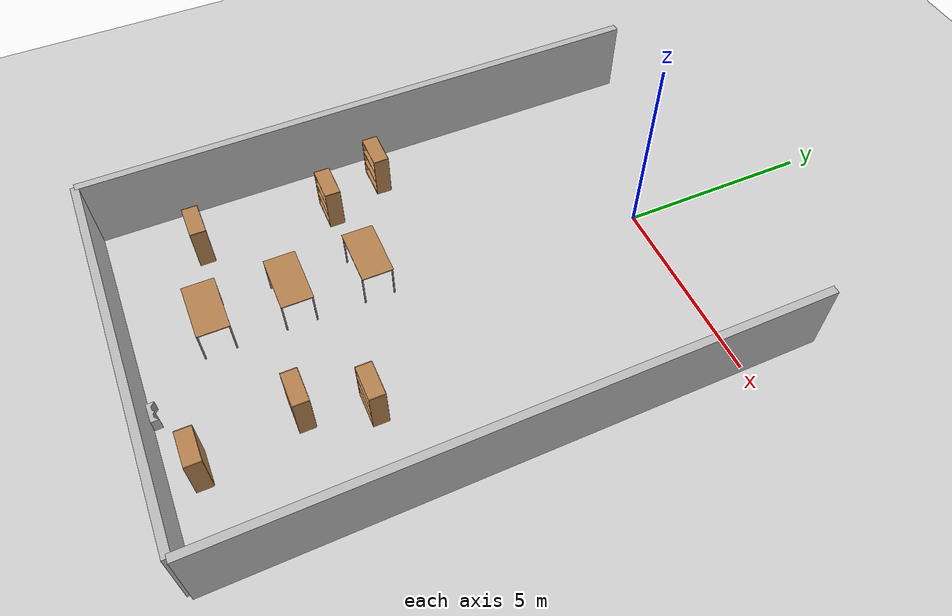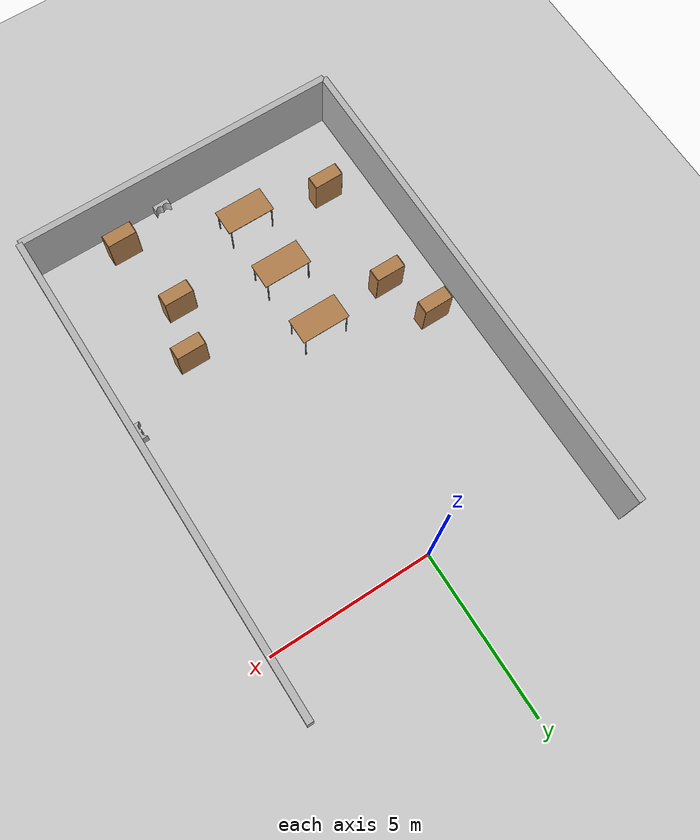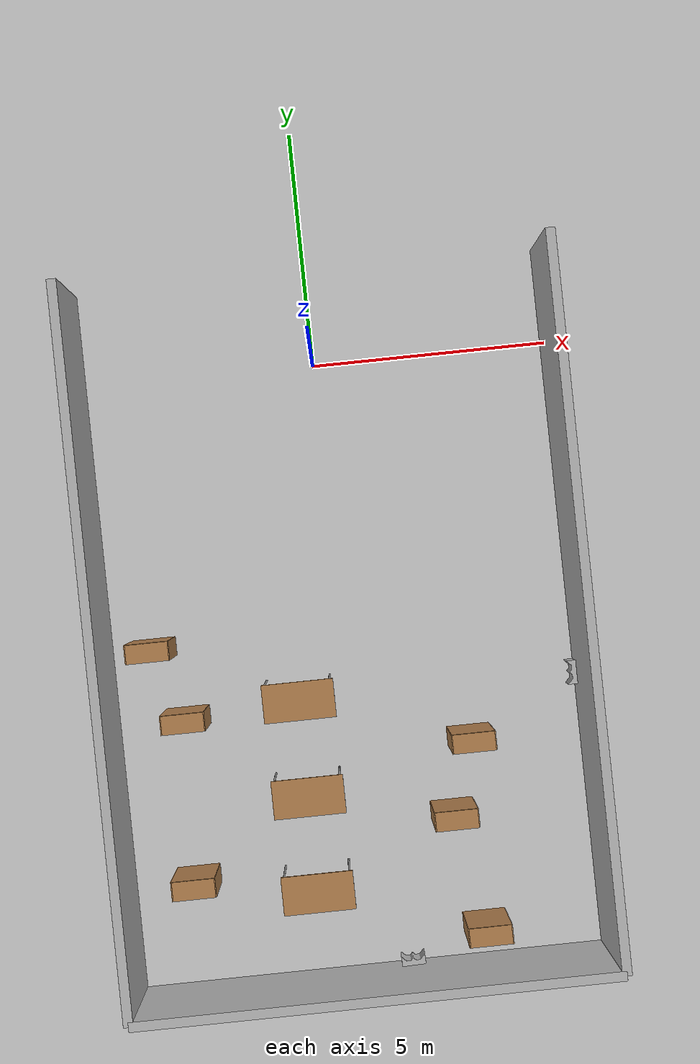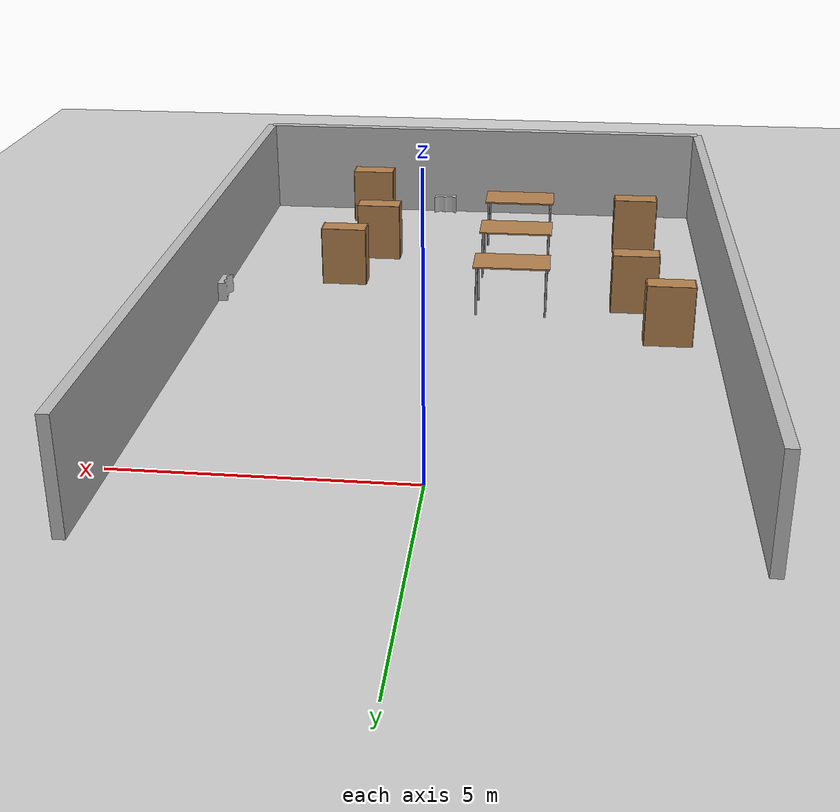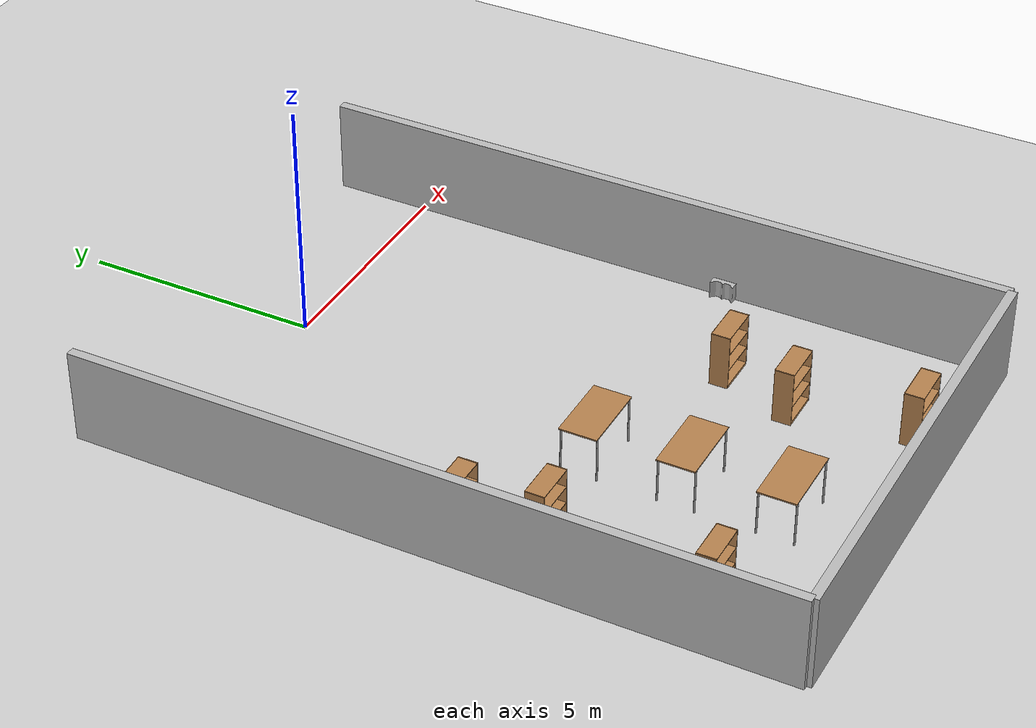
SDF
<sdf version="1.7">
 <world name="default">
  <model name="ground_plane">
   <static>1</static>
   <link name="link">
    <collision name="collision">
     <geometry><plane><normal>0 0 1</normal><size>100 100</size></plane></geometry>
     <surface><friction><ode><mu>100</mu><mu2>50</mu2></ode></friction></surface>
    </collision>
    <visual name="visual">
     <cast_shadows>0</cast_shadows>
     <geometry><plane><normal>0 0 1</normal><size>100 100</size></plane></geometry>
     <material>
      <script><uri>file://media/materials/scripts/gazebo.material</uri><name>Gazebo/Grey</name></script>
     </material>
    </visual>
    <velocity_decay><linear>0</linear><angular>0</angular></velocity_decay>
   </link>
  </model>
  <model name="wall_1_model">
   <pose>0 -13 1 0 -0 0</pose>
   <static>1</static>
   <link name="wall_1_body">
    <inertial>
     <mass>1</mass>
     <inertia><ixx>1</ixx><ixy>0</ixy><ixz>0</ixz><iyy>1</iyy><iyz>0</iyz><izz>1</izz></inertia>
    </inertial>
    <collision name="collision"><geometry><box><size>10 0.2 2</size></box></geometry></collision>
    <visual name="visual"><geometry><box><size>10 0.2 2</size></box></geometry></visual>
    <velocity_decay><linear>0</linear><angular>0</angular></velocity_decay>
   </link>
  </model>
  <model name="wall_3_model">
   <pose>-5 -5.5 1 0 -0 0</pose>
   <static>1</static>
   <link name="wall_3_body">
    <inertial>
     <mass>1</mass>
     <inertia><ixx>1</ixx><ixy>0</ixy><ixz>0</ixz><iyy>1</iyy><iyz>0</iyz><izz>1</izz></inertia>
    </inertial>
    <collision name="collision"><geometry><box><size>0.2 15 2</size></box></geometry></collision>
    <visual name="visual"><geometry><box><size>0.2 15 2</size></box></geometry></visual>
    <velocity_decay><linear>0</linear><angular>0</angular></velocity_decay>
   </link>
  </model>
  <model name="wall_4_model">
   <pose>5 -5.5 1 0 -0 0</pose>
   <static>1</static>
   <link name="wall_4_body">
    <inertial>
     <mass>1</mass>
     <inertia><ixx>1</ixx><ixy>0</ixy><ixz>0</ixz><iyy>1</iyy><iyz>0</iyz><izz>1</izz></inertia>
    </inertial>
    <collision name="collision"><geometry><box><size>0.2 15 2</size></box></geometry></collision>
    <visual name="visual"><geometry><box><size>0.2 15 2</size></box></geometry></visual>
    <velocity_decay><linear>0</linear><angular>0</angular></velocity_decay>
   </link>
  </model>
  <model name="bookshelf">
   <static>1</static>
   <link name="link">
    <inertial><mass>1</mass></inertial>
    <collision name="back">
     <pose>0 0.005 0.6 0 -0 0</pose>
     <geometry><box><size>0.9 0.01 1.2</size></box></geometry>
    </collision>
    <visual name="visual1">
     <pose>0 0.005 0.6 0 -0 0</pose>
     <geometry><box><size>0.9 0.01 1.2</size></box></geometry>
     <material>
      <script><uri>file://media/materials/scripts/gazebo.material</uri><name>Gazebo/Wood</name></script>
     </material>
    </visual>
    <collision name="left_side">
     <pose>0.45 -0.195 0.6 0 -0 0</pose>
     <geometry><box><size>0.02 0.4 1.2</size></box></geometry>
    </collision>
    <visual name="visual2">
     <pose>0.45 -0.195 0.6 0 -0 0</pose>
     <geometry><box><size>0.02 0.4 1.2</size></box></geometry>
     <material>
      <script><uri>file://media/materials/scripts/gazebo.material</uri><name>Gazebo/Wood</name></script>
     </material>
    </visual>
    <collision name="right_side">
     <pose>-0.45 -0.195 0.6 0 -0 0</pose>
     <geometry><box><size>0.02 0.4 1.2</size></box></geometry>
    </collision>
    <visual name="visual3">
     <pose>-0.45 -0.195 0.6 0 -0 0</pose>
     <geometry><box><size>0.02 0.4 1.2</size></box></geometry>
     <material>
      <script><uri>file://media/materials/scripts/gazebo.material</uri><name>Gazebo/Wood</name></script>
     </material>
    </visual>
    <collision name="bottom">
     <pose>0 -0.195 0.03 0 -0 0</pose>
     <geometry><box><size>0.88 0.4 0.06</size></box></geometry>
    </collision>
    <visual name="visual4">
     <pose>0 -0.195 0.03 0 -0 0</pose>
     <geometry><box><size>0.88 0.4 0.06</size></box></geometry>
     <material>
      <script><uri>file://media/materials/scripts/gazebo.material</uri><name>Gazebo/Wood</name></script>
     </material>
    </visual>
    <collision name="top">
     <pose>0 -0.195 1.19 0 -0 0</pose>
     <geometry><box><size>0.88 0.4 0.02</size></box></geometry>
    </collision>
    <visual name="visual5">
     <pose>0 -0.195 1.19 0 -0 0</pose>
     <geometry><box><size>0.88 0.4 0.02</size></box></geometry>
     <material>
      <script><uri>file://media/materials/scripts/gazebo.material</uri><name>Gazebo/Wood</name></script>
     </material>
    </visual>
    <collision name="low_shelf">
     <pose>0 -0.195 0.43 0 -0 0</pose>
     <geometry><box><size>0.88 0.4 0.02</size></box></geometry>
    </collision>
    <visual name="visual6">
     <pose>0 -0.195 0.43 0 -0 0</pose>
     <geometry><box><size>0.88 0.4 0.02</size></box></geometry>
     <material>
      <script><uri>file://media/materials/scripts/gazebo.material</uri><name>Gazebo/Wood</name></script>
     </material>
    </visual>
    <collision name="high_shelf">
     <pose>0 -0.195 0.8 0 -0 0</pose>
     <geometry><box><size>0.88 0.4 0.02</size></box></geometry>
    </collision>
    <visual name="visual7">
     <pose>0 -0.195 0.8 0 -0 0</pose>
     <geometry><box><size>0.88 0.4 0.02</size></box></geometry>
     <material>
      <script><uri>file://media/materials/scripts/gazebo.material</uri><name>Gazebo/Wood</name></script>
     </material>
    </visual>
    <velocity_decay><linear>0</linear><angular>0</angular></velocity_decay>
   </link>
   <pose>2 -9.55401 0 0 -0 0</pose>
  </model>
  <model name="table">
   <static>1</static>
   <link name="link">
    <collision name="surface">
     <pose>0 0 1 0 -0 0</pose>
     <geometry><box><size>1.5 0.8 0.03</size></box></geometry>
    </collision>
    <visual name="visual1">
     <pose>0 0 1 0 -0 0</pose>
     <geometry><box><size>1.5 0.8 0.03</size></box></geometry>
     <material>
      <script><uri>file://media/materials/scripts/gazebo.material</uri><name>Gazebo/Wood</name></script>
     </material>
    </visual>
    <collision name="front_left_leg">
     <pose>0.68 0.38 0.5 0 -0 0</pose>
     <geometry><cylinder><radius>0.02</radius><length>1</length></cylinder></geometry>
    </collision>
    <visual name="front_left_leg">
     <pose>0.68 0.38 0.5 0 -0 0</pose>
     <geometry><cylinder><radius>0.02</radius><length>1</length></cylinder></geometry>
     <material>
      <script><uri>file://media/materials/scripts/gazebo.material</uri><name>Gazebo/Grey</name></script>
     </material>
    </visual>
    <collision name="front_right_leg">
     <pose>0.68 -0.38 0.5 0 -0 0</pose>
     <geometry><cylinder><radius>0.02</radius><length>1</length></cylinder></geometry>
    </collision>
    <visual name="front_right_leg">
     <pose>0.68 -0.38 0.5 0 -0 0</pose>
     <geometry><cylinder><radius>0.02</radius><length>1</length></cylinder></geometry>
     <material>
      <script><uri>file://media/materials/scripts/gazebo.material</uri><name>Gazebo/Grey</name></script>
     </material>
    </visual>
    <collision name="back_right_leg">
     <pose>-0.68 -0.38 0.5 0 -0 0</pose>
     <geometry><cylinder><radius>0.02</radius><length>1</length></cylinder></geometry>
    </collision>
    <visual name="back_right_leg">
     <pose>-0.68 -0.38 0.5 0 -0 0</pose>
     <geometry><cylinder><radius>0.02</radius><length>1</length></cylinder></geometry>
     <material>
      <script><uri>file://media/materials/scripts/gazebo.material</uri><name>Gazebo/Grey</name></script>
     </material>
    </visual>
    <collision name="back_left_leg">
     <pose>-0.68 0.38 0.5 0 -0 0</pose>
     <geometry><cylinder><radius>0.02</radius><length>1</length></cylinder></geometry>
    </collision>
    <visual name="back_left_leg">
     <pose>-0.68 0.38 0.5 0 -0 0</pose>
     <geometry><cylinder><radius>0.02</radius><length>1</length></cylinder></geometry>
     <material>
      <script><uri>file://media/materials/scripts/gazebo.material</uri><name>Gazebo/Grey</name></script>
     </material>
    </visual>
    <velocity_decay><linear>0</linear><angular>0</angular></velocity_decay>
   </link>
   <pose>-1 -9 0 0 -0 0</pose>
  </model>
  <model name="bookshelf_2">
   <static>1</static>
   <link name="link">
    <inertial><mass>1</mass></inertial>
    <collision name="back">
     <pose>0 0.005 0.6 0 -0 0</pose>
     <geometry><box><size>0.9 0.01 1.2</size></box></geometry>
    </collision>
    <visual name="visual1">
     <pose>0 0.005 0.6 0 -0 0</pose>
     <geometry><box><size>0.9 0.01 1.2</size></box></geometry>
     <material>
      <script><uri>file://media/materials/scripts/gazebo.material</uri><name>Gazebo/Wood</name></script>
     </material>
    </visual>
    <collision name="left_side">
     <pose>0.45 -0.195 0.6 0 -0 0</pose>
     <geometry><box><size>0.02 0.4 1.2</size></box></geometry>
    </collision>
    <visual name="visual2">
     <pose>0.45 -0.195 0.6 0 -0 0</pose>
     <geometry><box><size>0.02 0.4 1.2</size></box></geometry>
     <material>
      <script><uri>file://media/materials/scripts/gazebo.material</uri><name>Gazebo/Wood</name></script>
     </material>
    </visual>
    <collision name="right_side">
     <pose>-0.45 -0.195 0.6 0 -0 0</pose>
     <geometry><box><size>0.02 0.4 1.2</size></box></geometry>
    </collision>
    <visual name="visual3">
     <pose>-0.45 -0.195 0.6 0 -0 0</pose>
     <geometry><box><size>0.02 0.4 1.2</size></box></geometry>
     <material>
      <script><uri>file://media/materials/scripts/gazebo.material</uri><name>Gazebo/Wood</name></script>
     </material>
    </visual>
    <collision name="bottom">
     <pose>0 -0.195 0.03 0 -0 0</pose>
     <geometry><box><size>0.88 0.4 0.06</size></box></geometry>
    </collision>
    <visual name="visual4">
     <pose>0 -0.195 0.03 0 -0 0</pose>
     <geometry><box><size>0.88 0.4 0.06</size></box></geometry>
     <material>
      <script><uri>file://media/materials/scripts/gazebo.material</uri><name>Gazebo/Wood</name></script>
     </material>
    </visual>
    <collision name="top">
     <pose>0 -0.195 1.19 0 -0 0</pose>
     <geometry><box><size>0.88 0.4 0.02</size></box></geometry>
    </collision>
    <visual name="visual5">
     <pose>0 -0.195 1.19 0 -0 0</pose>
     <geometry><box><size>0.88 0.4 0.02</size></box></geometry>
     <material>
      <script><uri>file://media/materials/scripts/gazebo.material</uri><name>Gazebo/Wood</name></script>
     </material>
    </visual>
    <collision name="low_shelf">
     <pose>0 -0.195 0.43 0 -0 0</pose>
     <geometry><box><size>0.88 0.4 0.02</size></box></geometry>
    </collision>
    <visual name="visual6">
     <pose>0 -0.195 0.43 0 -0 0</pose>
     <geometry><box><size>0.88 0.4 0.02</size></box></geometry>
     <material>
      <script><uri>file://media/materials/scripts/gazebo.material</uri><name>Gazebo/Wood</name></script>
     </material>
    </visual>
    <collision name="high_shelf">
     <pose>0 -0.195 0.8 0 -0 0</pose>
     <geometry><box><size>0.88 0.4 0.02</size></box></geometry>
    </collision>
    <visual name="visual7">
     <pose>0 -0.195 0.8 0 -0 0</pose>
     <geometry><box><size>0.88 0.4 0.02</size></box></geometry>
     <material>
      <script><uri>file://media/materials/scripts/gazebo.material</uri><name>Gazebo/Wood</name></script>
     </material>
    </visual>
    <velocity_decay><linear>0</linear><angular>0</angular></velocity_decay>
   </link>
   <pose>-3.41849 -7 0 0 -0 0</pose>
  </model>
  <model name="table_0">
   <static>1</static>
   <link name="link">
    <collision name="surface">
     <pose>0 0 1 0 -0 0</pose>
     <geometry><box><size>1.5 0.8 0.03</size></box></geometry>
    </collision>
    <visual name="visual1">
     <pose>0 0 1 0 -0 0</pose>
     <geometry><box><size>1.5 0.8 0.03</size></box></geometry>
     <material>
      <script><uri>file://media/materials/scripts/gazebo.material</uri><name>Gazebo/Wood</name></script>
     </material>
    </visual>
    <collision name="front_left_leg">
     <pose>0.68 0.38 0.5 0 -0 0</pose>
     <geometry><cylinder><radius>0.02</radius><length>1</length></cylinder></geometry>
    </collision>
    <visual name="front_left_leg">
     <pose>0.68 0.38 0.5 0 -0 0</pose>
     <geometry><cylinder><radius>0.02</radius><length>1</length></cylinder></geometry>
     <material>
      <script><uri>file://media/materials/scripts/gazebo.material</uri><name>Gazebo/Grey</name></script>
     </material>
    </visual>
    <collision name="front_right_leg">
     <pose>0.68 -0.38 0.5 0 -0 0</pose>
     <geometry><cylinder><radius>0.02</radius><length>1</length></cylinder></geometry>
    </collision>
    <visual name="front_right_leg">
     <pose>0.68 -0.38 0.5 0 -0 0</pose>
     <geometry><cylinder><radius>0.02</radius><length>1</length></cylinder></geometry>
     <material>
      <script><uri>file://media/materials/scripts/gazebo.material</uri><name>Gazebo/Grey</name></script>
     </material>
    </visual>
    <collision name="back_right_leg">
     <pose>-0.68 -0.38 0.5 0 -0 0</pose>
     <geometry><cylinder><radius>0.02</radius><length>1</length></cylinder></geometry>
    </collision>
    <visual name="back_right_leg">
     <pose>-0.68 -0.38 0.5 0 -0 0</pose>
     <geometry><cylinder><radius>0.02</radius><length>1</length></cylinder></geometry>
     <material>
      <script><uri>file://media/materials/scripts/gazebo.material</uri><name>Gazebo/Grey</name></script>
     </material>
    </visual>
    <collision name="back_left_leg">
     <pose>-0.68 0.38 0.5 0 -0 0</pose>
     <geometry><cylinder><radius>0.02</radius><length>1</length></cylinder></geometry>
    </collision>
    <visual name="back_left_leg">
     <pose>-0.68 0.38 0.5 0 -0 0</pose>
     <geometry><cylinder><radius>0.02</radius><length>1</length></cylinder></geometry>
     <material>
      <script><uri>file://media/materials/scripts/gazebo.material</uri><name>Gazebo/Grey</name></script>
     </material>
    </visual>
    <velocity_decay><linear>0</linear><angular>0</angular></velocity_decay>
   </link>
   <pose>-1 -7 0 0 -0 0</pose>
  </model>
  <model name="table_1">
   <static>1</static>
   <link name="link">
    <collision name="surface">
     <pose>0 0 1 0 -0 0</pose>
     <geometry><box><size>1.5 0.8 0.03</size></box></geometry>
    </collision>
    <visual name="visual1">
     <pose>0 0 1 0 -0 0</pose>
     <geometry><box><size>1.5 0.8 0.03</size></box></geometry>
     <material>
      <script><uri>file://media/materials/scripts/gazebo.material</uri><name>Gazebo/Wood</name></script>
     </material>
    </visual>
    <collision name="front_left_leg">
     <pose>0.68 0.38 0.5 0 -0 0</pose>
     <geometry><cylinder><radius>0.02</radius><length>1</length></cylinder></geometry>
    </collision>
    <visual name="front_left_leg">
     <pose>0.68 0.38 0.5 0 -0 0</pose>
     <geometry><cylinder><radius>0.02</radius><length>1</length></cylinder></geometry>
     <material>
      <script><uri>file://media/materials/scripts/gazebo.material</uri><name>Gazebo/Grey</name></script>
     </material>
    </visual>
    <collision name="front_right_leg">
     <pose>0.68 -0.38 0.5 0 -0 0</pose>
     <geometry><cylinder><radius>0.02</radius><length>1</length></cylinder></geometry>
    </collision>
    <visual name="front_right_leg">
     <pose>0.68 -0.38 0.5 0 -0 0</pose>
     <geometry><cylinder><radius>0.02</radius><length>1</length></cylinder></geometry>
     <material>
      <script><uri>file://media/materials/scripts/gazebo.material</uri><name>Gazebo/Grey</name></script>
     </material>
    </visual>
    <collision name="back_right_leg">
     <pose>-0.68 -0.38 0.5 0 -0 0</pose>
     <geometry><cylinder><radius>0.02</radius><length>1</length></cylinder></geometry>
    </collision>
    <visual name="back_right_leg">
     <pose>-0.68 -0.38 0.5 0 -0 0</pose>
     <geometry><cylinder><radius>0.02</radius><length>1</length></cylinder></geometry>
     <material>
      <script><uri>file://media/materials/scripts/gazebo.material</uri><name>Gazebo/Grey</name></script>
     </material>
    </visual>
    <collision name="back_left_leg">
     <pose>-0.68 0.38 0.5 0 -0 0</pose>
     <geometry><cylinder><radius>0.02</radius><length>1</length></cylinder></geometry>
    </collision>
    <visual name="back_left_leg">
     <pose>-0.68 0.38 0.5 0 -0 0</pose>
     <geometry><cylinder><radius>0.02</radius><length>1</length></cylinder></geometry>
     <material>
      <script><uri>file://media/materials/scripts/gazebo.material</uri><name>Gazebo/Grey</name></script>
     </material>
    </visual>
    <velocity_decay><linear>0</linear><angular>0</angular></velocity_decay>
   </link>
   <pose>-1 -11 0 0 -0 0</pose>
  </model>
  <model name="bookshelf_3">
   <static>1</static>
   <link name="link">
    <inertial><mass>1</mass></inertial>
    <collision name="back">
     <pose>0 0.005 0.6 0 -0 0</pose>
     <geometry><box><size>0.9 0.01 1.2</size></box></geometry>
    </collision>
    <visual name="visual1">
     <pose>0 0.005 0.6 0 -0 0</pose>
     <geometry><box><size>0.9 0.01 1.2</size></box></geometry>
     <material>
      <script><uri>file://media/materials/scripts/gazebo.material</uri><name>Gazebo/Wood</name></script>
     </material>
    </visual>
    <collision name="left_side">
     <pose>0.45 -0.195 0.6 0 -0 0</pose>
     <geometry><box><size>0.02 0.4 1.2</size></box></geometry>
    </collision>
    <visual name="visual2">
     <pose>0.45 -0.195 0.6 0 -0 0</pose>
     <geometry><box><size>0.02 0.4 1.2</size></box></geometry>
     <material>
      <script><uri>file://media/materials/scripts/gazebo.material</uri><name>Gazebo/Wood</name></script>
     </material>
    </visual>
    <collision name="right_side">
     <pose>-0.45 -0.195 0.6 0 -0 0</pose>
     <geometry><box><size>0.02 0.4 1.2</size></box></geometry>
    </collision>
    <visual name="visual3">
     <pose>-0.45 -0.195 0.6 0 -0 0</pose>
     <geometry><box><size>0.02 0.4 1.2</size></box></geometry>
     <material>
      <script><uri>file://media/materials/scripts/gazebo.material</uri><name>Gazebo/Wood</name></script>
     </material>
    </visual>
    <collision name="bottom">
     <pose>0 -0.195 0.03 0 -0 0</pose>
     <geometry><box><size>0.88 0.4 0.06</size></box></geometry>
    </collision>
    <visual name="visual4">
     <pose>0 -0.195 0.03 0 -0 0</pose>
     <geometry><box><size>0.88 0.4 0.06</size></box></geometry>
     <material>
      <script><uri>file://media/materials/scripts/gazebo.material</uri><name>Gazebo/Wood</name></script>
     </material>
    </visual>
    <collision name="top">
     <pose>0 -0.195 1.19 0 -0 0</pose>
     <geometry><box><size>0.88 0.4 0.02</size></box></geometry>
    </collision>
    <visual name="visual5">
     <pose>0 -0.195 1.19 0 -0 0</pose>
     <geometry><box><size>0.88 0.4 0.02</size></box></geometry>
     <material>
      <script><uri>file://media/materials/scripts/gazebo.material</uri><name>Gazebo/Wood</name></script>
     </material>
    </visual>
    <collision name="low_shelf">
     <pose>0 -0.195 0.43 0 -0 0</pose>
     <geometry><box><size>0.88 0.4 0.02</size></box></geometry>
    </collision>
    <visual name="visual6">
     <pose>0 -0.195 0.43 0 -0 0</pose>
     <geometry><box><size>0.88 0.4 0.02</size></box></geometry>
     <material>
      <script><uri>file://media/materials/scripts/gazebo.material</uri><name>Gazebo/Wood</name></script>
     </material>
    </visual>
    <collision name="high_shelf">
     <pose>0 -0.195 0.8 0 -0 0</pose>
     <geometry><box><size>0.88 0.4 0.02</size></box></geometry>
    </collision>
    <visual name="visual7">
     <pose>0 -0.195 0.8 0 -0 0</pose>
     <geometry><box><size>0.88 0.4 0.02</size></box></geometry>
     <material>
      <script><uri>file://media/materials/scripts/gazebo.material</uri><name>Gazebo/Wood</name></script>
     </material>
    </visual>
    <velocity_decay><linear>0</linear><angular>0</angular></velocity_decay>
   </link>
   <pose>2.45055 -12 0 0 -0 0</pose>
  </model>
  <model name="bookshelf_4">
   <static>1</static>
   <link name="link">
    <inertial><mass>1</mass></inertial>
    <collision name="back">
     <pose>0 0.005 0.6 0 -0 0</pose>
     <geometry><box><size>0.9 0.01 1.2</size></box></geometry>
    </collision>
    <visual name="visual1">
     <pose>0 0.005 0.6 0 -0 0</pose>
     <geometry><box><size>0.9 0.01 1.2</size></box></geometry>
     <material>
      <script><uri>file://media/materials/scripts/gazebo.material</uri><name>Gazebo/Wood</name></script>
     </material>
    </visual>
    <collision name="left_side">
     <pose>0.45 -0.195 0.6 0 -0 0</pose>
     <geometry><box><size>0.02 0.4 1.2</size></box></geometry>
    </collision>
    <visual name="visual2">
     <pose>0.45 -0.195 0.6 0 -0 0</pose>
     <geometry><box><size>0.02 0.4 1.2</size></box></geometry>
     <material>
      <script><uri>file://media/materials/scripts/gazebo.material</uri><name>Gazebo/Wood</name></script>
     </material>
    </visual>
    <collision name="right_side">
     <pose>-0.45 -0.195 0.6 0 -0 0</pose>
     <geometry><box><size>0.02 0.4 1.2</size></box></geometry>
    </collision>
    <visual name="visual3">
     <pose>-0.45 -0.195 0.6 0 -0 0</pose>
     <geometry><box><size>0.02 0.4 1.2</size></box></geometry>
     <material>
      <script><uri>file://media/materials/scripts/gazebo.material</uri><name>Gazebo/Wood</name></script>
     </material>
    </visual>
    <collision name="bottom">
     <pose>0 -0.195 0.03 0 -0 0</pose>
     <geometry><box><size>0.88 0.4 0.06</size></box></geometry>
    </collision>
    <visual name="visual4">
     <pose>0 -0.195 0.03 0 -0 0</pose>
     <geometry><box><size>0.88 0.4 0.06</size></box></geometry>
     <material>
      <script><uri>file://media/materials/scripts/gazebo.material</uri><name>Gazebo/Wood</name></script>
     </material>
    </visual>
    <collision name="top">
     <pose>0 -0.195 1.19 0 -0 0</pose>
     <geometry><box><size>0.88 0.4 0.02</size></box></geometry>
    </collision>
    <visual name="visual5">
     <pose>0 -0.195 1.19 0 -0 0</pose>
     <geometry><box><size>0.88 0.4 0.02</size></box></geometry>
     <material>
      <script><uri>file://media/materials/scripts/gazebo.material</uri><name>Gazebo/Wood</name></script>
     </material>
    </visual>
    <collision name="low_shelf">
     <pose>0 -0.195 0.43 0 -0 0</pose>
     <geometry><box><size>0.88 0.4 0.02</size></box></geometry>
    </collision>
    <visual name="visual6">
     <pose>0 -0.195 0.43 0 -0 0</pose>
     <geometry><box><size>0.88 0.4 0.02</size></box></geometry>
     <material>
      <script><uri>file://media/materials/scripts/gazebo.material</uri><name>Gazebo/Wood</name></script>
     </material>
    </visual>
    <collision name="high_shelf">
     <pose>0 -0.195 0.8 0 -0 0</pose>
     <geometry><box><size>0.88 0.4 0.02</size></box></geometry>
    </collision>
    <visual name="visual7">
     <pose>0 -0.195 0.8 0 -0 0</pose>
     <geometry><box><size>0.88 0.4 0.02</size></box></geometry>
     <material>
      <script><uri>file://media/materials/scripts/gazebo.material</uri><name>Gazebo/Wood</name></script>
     </material>
    </visual>
    <velocity_decay><linear>0</linear><angular>0</angular></velocity_decay>
   </link>
   <pose>2.51316 -8 0 0 -0 0</pose>
  </model>
  <model name="bookshelf_5">
   <static>1</static>
   <link name="link">
    <inertial><mass>1</mass></inertial>
    <collision name="back">
     <pose>0 0.005 0.6 0 -0 0</pose>
     <geometry><box><size>0.9 0.01 1.2</size></box></geometry>
    </collision>
    <visual name="visual1">
     <pose>0 0.005 0.6 0 -0 0</pose>
     <geometry><box><size>0.9 0.01 1.2</size></box></geometry>
     <material>
      <script><uri>file://media/materials/scripts/gazebo.material</uri><name>Gazebo/Wood</name></script>
     </material>
    </visual>
    <collision name="left_side">
     <pose>0.45 -0.195 0.6 0 -0 0</pose>
     <geometry><box><size>0.02 0.4 1.2</size></box></geometry>
    </collision>
    <visual name="visual2">
     <pose>0.45 -0.195 0.6 0 -0 0</pose>
     <geometry><box><size>0.02 0.4 1.2</size></box></geometry>
     <material>
      <script><uri>file://media/materials/scripts/gazebo.material</uri><name>Gazebo/Wood</name></script>
     </material>
    </visual>
    <collision name="right_side">
     <pose>-0.45 -0.195 0.6 0 -0 0</pose>
     <geometry><box><size>0.02 0.4 1.2</size></box></geometry>
    </collision>
    <visual name="visual3">
     <pose>-0.45 -0.195 0.6 0 -0 0</pose>
     <geometry><box><size>0.02 0.4 1.2</size></box></geometry>
     <material>
      <script><uri>file://media/materials/scripts/gazebo.material</uri><name>Gazebo/Wood</name></script>
     </material>
    </visual>
    <collision name="bottom">
     <pose>0 -0.195 0.03 0 -0 0</pose>
     <geometry><box><size>0.88 0.4 0.06</size></box></geometry>
    </collision>
    <visual name="visual4">
     <pose>0 -0.195 0.03 0 -0 0</pose>
     <geometry><box><size>0.88 0.4 0.06</size></box></geometry>
     <material>
      <script><uri>file://media/materials/scripts/gazebo.material</uri><name>Gazebo/Wood</name></script>
     </material>
    </visual>
    <collision name="top">
     <pose>0 -0.195 1.19 0 -0 0</pose>
     <geometry><box><size>0.88 0.4 0.02</size></box></geometry>
    </collision>
    <visual name="visual5">
     <pose>0 -0.195 1.19 0 -0 0</pose>
     <geometry><box><size>0.88 0.4 0.02</size></box></geometry>
     <material>
      <script><uri>file://media/materials/scripts/gazebo.material</uri><name>Gazebo/Wood</name></script>
     </material>
    </visual>
    <collision name="low_shelf">
     <pose>0 -0.195 0.43 0 -0 0</pose>
     <geometry><box><size>0.88 0.4 0.02</size></box></geometry>
    </collision>
    <visual name="visual6">
     <pose>0 -0.195 0.43 0 -0 0</pose>
     <geometry><box><size>0.88 0.4 0.02</size></box></geometry>
     <material>
      <script><uri>file://media/materials/scripts/gazebo.material</uri><name>Gazebo/Wood</name></script>
     </material>
    </visual>
    <collision name="high_shelf">
     <pose>0 -0.195 0.8 0 -0 0</pose>
     <geometry><box><size>0.88 0.4 0.02</size></box></geometry>
    </collision>
    <visual name="visual7">
     <pose>0 -0.195 0.8 0 -0 0</pose>
     <geometry><box><size>0.88 0.4 0.02</size></box></geometry>
     <material>
      <script><uri>file://media/materials/scripts/gazebo.material</uri><name>Gazebo/Wood</name></script>
     </material>
    </visual>
    <velocity_decay><linear>0</linear><angular>0</angular></velocity_decay>
   </link>
   <pose>-3.53929 -10.4222 0 0 -0 0</pose>
  </model>
  <model name="bookshelf_6">
   <static>1</static>
   <link name="link">
    <inertial><mass>1</mass></inertial>
    <collision name="back">
     <pose>0 0.005 0.6 0 -0 0</pose>
     <geometry><box><size>0.9 0.01 1.2</size></box></geometry>
    </collision>
    <visual name="visual1">
     <pose>0 0.005 0.6 0 -0 0</pose>
     <geometry><box><size>0.9 0.01 1.2</size></box></geometry>
     <material>
      <script><uri>file://media/materials/scripts/gazebo.material</uri><name>Gazebo/Wood</name></script>
     </material>
    </visual>
    <collision name="left_side">
     <pose>0.45 -0.195 0.6 0 -0 0</pose>
     <geometry><box><size>0.02 0.4 1.2</size></box></geometry>
    </collision>
    <visual name="visual2">
     <pose>0.45 -0.195 0.6 0 -0 0</pose>
     <geometry><box><size>0.02 0.4 1.2</size></box></geometry>
     <material>
      <script><uri>file://media/materials/scripts/gazebo.material</uri><name>Gazebo/Wood</name></script>
     </material>
    </visual>
    <collision name="right_side">
     <pose>-0.45 -0.195 0.6 0 -0 0</pose>
     <geometry><box><size>0.02 0.4 1.2</size></box></geometry>
    </collision>
    <visual name="visual3">
     <pose>-0.45 -0.195 0.6 0 -0 0</pose>
     <geometry><box><size>0.02 0.4 1.2</size></box></geometry>
     <material>
      <script><uri>file://media/materials/scripts/gazebo.material</uri><name>Gazebo/Wood</name></script>
     </material>
    </visual>
    <collision name="bottom">
     <pose>0 -0.195 0.03 0 -0 0</pose>
     <geometry><box><size>0.88 0.4 0.06</size></box></geometry>
    </collision>
    <visual name="visual4">
     <pose>0 -0.195 0.03 0 -0 0</pose>
     <geometry><box><size>0.88 0.4 0.06</size></box></geometry>
     <material>
      <script><uri>file://media/materials/scripts/gazebo.material</uri><name>Gazebo/Wood</name></script>
     </material>
    </visual>
    <collision name="top">
     <pose>0 -0.195 1.19 0 -0 0</pose>
     <geometry><box><size>0.88 0.4 0.02</size></box></geometry>
    </collision>
    <visual name="visual5">
     <pose>0 -0.195 1.19 0 -0 0</pose>
     <geometry><box><size>0.88 0.4 0.02</size></box></geometry>
     <material>
      <script><uri>file://media/materials/scripts/gazebo.material</uri><name>Gazebo/Wood</name></script>
     </material>
    </visual>
    <collision name="low_shelf">
     <pose>0 -0.195 0.43 0 -0 0</pose>
     <geometry><box><size>0.88 0.4 0.02</size></box></geometry>
    </collision>
    <visual name="visual6">
     <pose>0 -0.195 0.43 0 -0 0</pose>
     <geometry><box><size>0.88 0.4 0.02</size></box></geometry>
     <material>
      <script><uri>file://media/materials/scripts/gazebo.material</uri><name>Gazebo/Wood</name></script>
     </material>
    </visual>
    <collision name="high_shelf">
     <pose>0 -0.195 0.8 0 -0 0</pose>
     <geometry><box><size>0.88 0.4 0.02</size></box></geometry>
    </collision>
    <visual name="visual7">
     <pose>0 -0.195 0.8 0 -0 0</pose>
     <geometry><box><size>0.88 0.4 0.02</size></box></geometry>
     <material>
      <script><uri>file://media/materials/scripts/gazebo.material</uri><name>Gazebo/Wood</name></script>
     </material>
    </visual>
    <velocity_decay><linear>0</linear><angular>0</angular></velocity_decay>
   </link>
   <pose>-4 -5.47465 0 0 -0 0</pose>
  </model>
  <model name="dock">
   <pose>0.835039 -12.7394 0.02 0 0 -1.54633</pose>
   <static>1</static>
   <link name="link">
    <inertial>
     <mass>1</mass>
     <inertia><ixx>0.083</ixx><ixy>0</ixy><ixz>0</ixz><iyy>0.083</iyy><iyz>0</iyz><izz>0.083</izz></inertia>
    </inertial>
    <collision name="collision">
     <geometry><mesh><uri>model://dock1/meshes/dock1.dae</uri><scale>1 1 3</scale></mesh></geometry>
    </collision>
    <visual name="visual">
     <geometry><mesh><uri>model://dock1/meshes/dock1.dae</uri><scale>1 1 3</scale></mesh></geometry>
    </visual>
   </link>
  </model>
  <model name="dock_0">
   <pose>4.7532 -7.06057 0.02 0 -0 0</pose>
   <static>1</static>
   <link name="link">
    <inertial>
     <mass>1</mass>
     <inertia><ixx>0.083</ixx><ixy>0</ixy><ixz>0</ixz><iyy>0.083</iyy><iyz>0</iyz><izz>0.083</izz></inertia>
    </inertial>
    <collision name="collision">
     <geometry><mesh><uri>model://dock1/meshes/dock1.dae</uri><scale>1 1 3</scale></mesh></geometry>
    </collision>
    <visual name="visual">
     <geometry><mesh><uri>model://dock1/meshes/dock1.dae</uri><scale>1 1 3</scale></mesh></geometry>
    </visual>
   </link>
  </model>
 </world>
</sdf>
